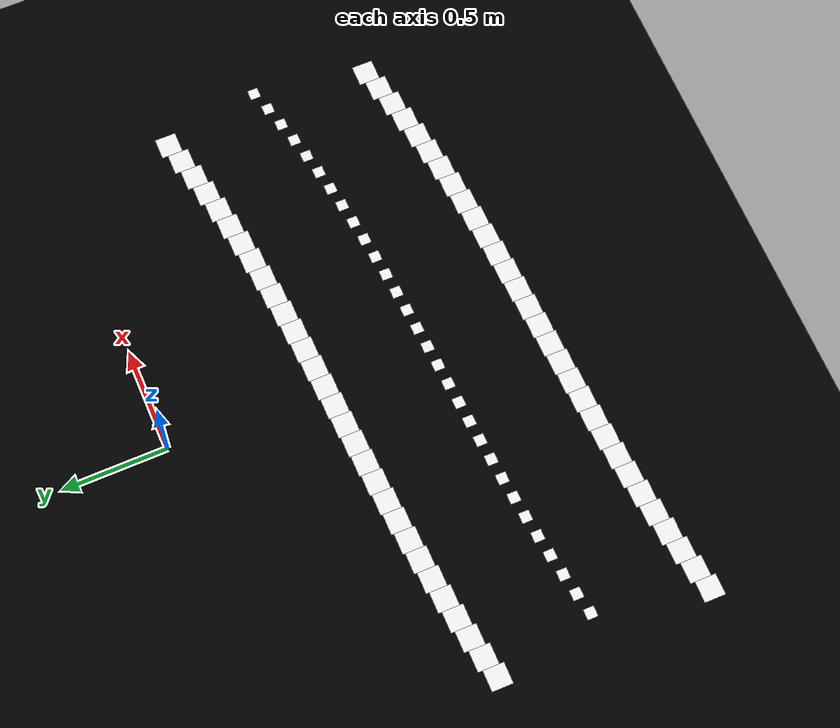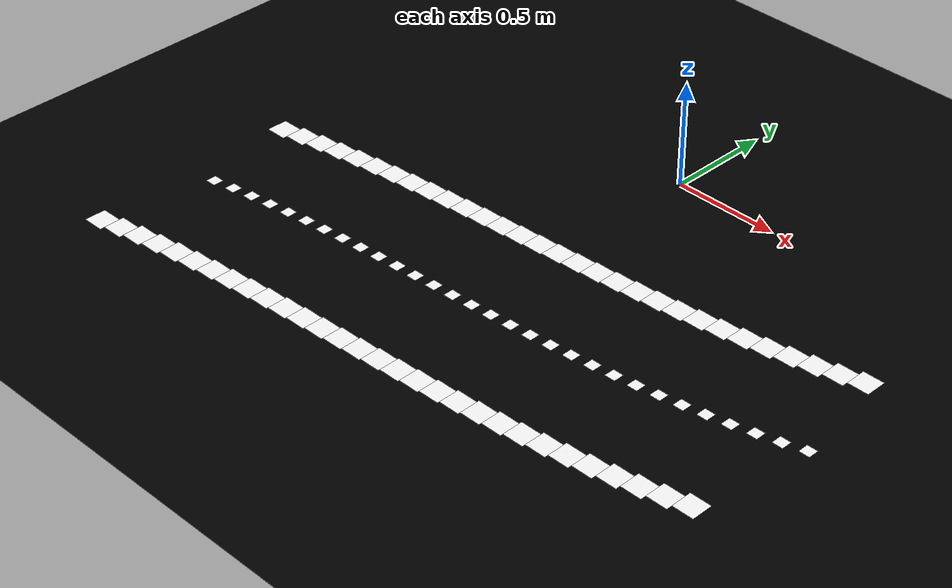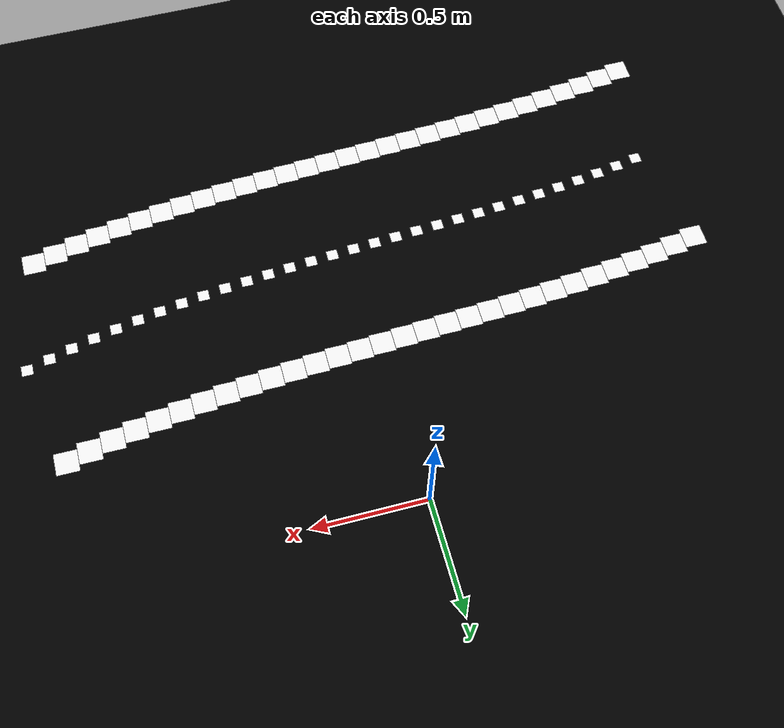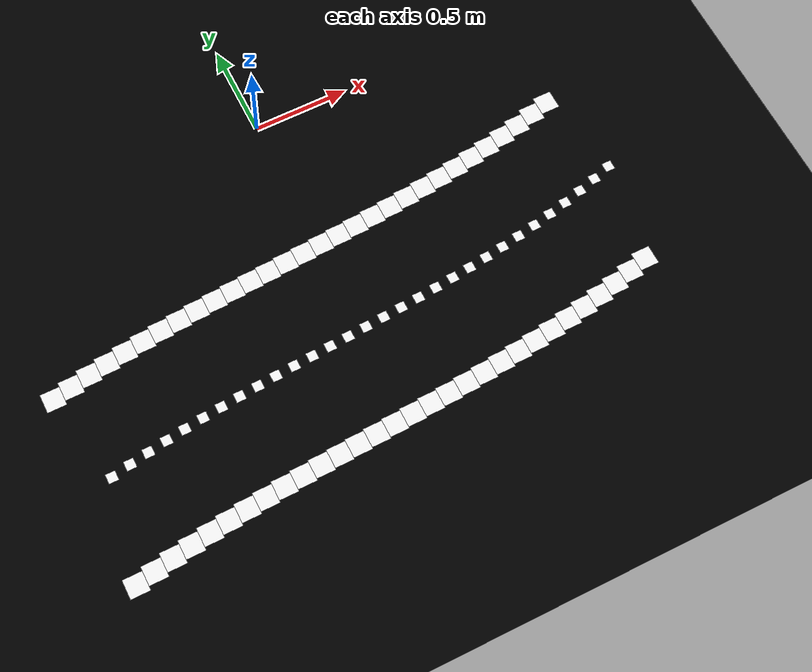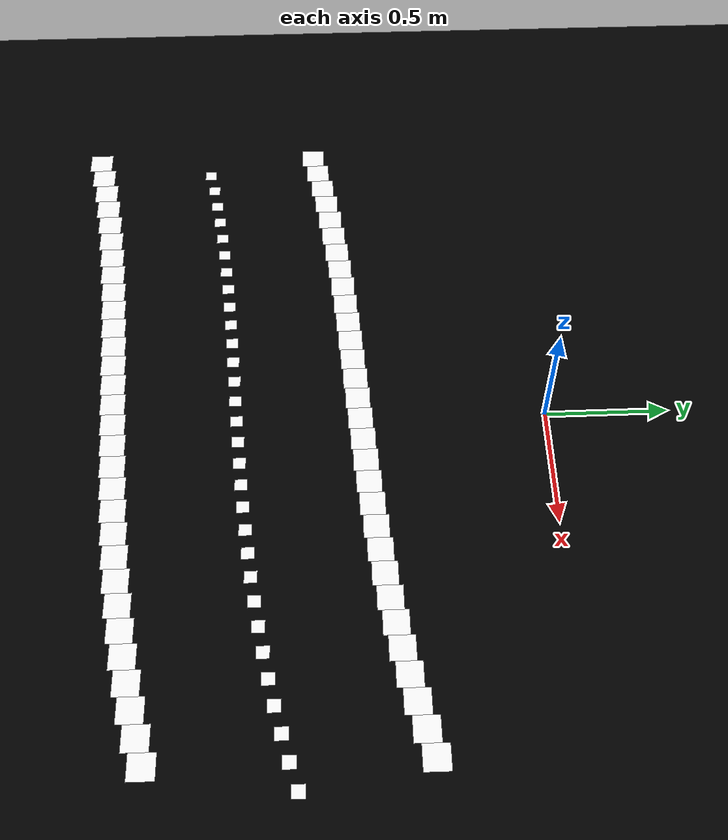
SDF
<sdf version="1.5">
 <model name="AutoNOMOS_mini_intersection">
  <static>true</static>
  <link name="field">
   <pose>0 0 0.01 0 0 0</pose>
   <collision name="collision">
    <geometry><plane><normal>0 0 1</normal><size>10 10</size></plane></geometry>
    <surface><friction><ode><mu>100</mu><mu2>50</mu2></ode></friction></surface>
   </collision>
   <visual name="carpet">
    <cast_shadows>false</cast_shadows>
    <geometry><plane><normal>0 0 1</normal><size>10 10</size></plane></geometry>
    <material>
     <ambient>0 0 0 0</ambient>
     <diffuse>0 0 0 1</diffuse>
     <specular>0 0 0 0</specular>
     <emissive>0 0 0 0</emissive>
    </material>
   </visual>
  </link>
  <link name="L2_p31">
   <pose>-1.5 -0.928 0.011 0 0 0</pose>
   <visual name="visual_L2_p31">
    <cast_shadows>false</cast_shadows>
    <geometry><plane><normal>0 0 1</normal><size>.1 .1</size></plane></geometry>
    <material>
     <ambient>0 0 0 0</ambient>
     <diffuse>1 1 1 0</diffuse>
     <specular>0 0 0 0</specular>
     <emissive>0 0 0 0</emissive>
    </material>
   </visual>
  </link>
  <link name="L3_p31">
   <pose>-1.5 -1.928 0.011 0 0 0</pose>
   <visual name="visual_L3_p31">
    <cast_shadows>false</cast_shadows>
    <geometry><plane><normal>0 0 1</normal><size>.1 .1</size></plane></geometry>
    <material>
     <ambient>0 0 0 0</ambient>
     <diffuse>1 1 1 0</diffuse>
     <specular>0 0 0 0</specular>
     <emissive>0 0 0 0</emissive>
    </material>
   </visual>
  </link>
  <link name="L1_p32">
   <pose>-1.4 -1.407 0.011 0 0 0</pose>
   <visual name="visual_L1_p32">
    <cast_shadows>false</cast_shadows>
    <geometry><plane><normal>0 0 1</normal><size>.05 .05</size></plane></geometry>
    <material>
     <ambient>0 0 0 0</ambient>
     <diffuse>1 1 1 0</diffuse>
     <specular>0 0 0 0</specular>
     <emissive>0 0 0 0</emissive>
    </material>
   </visual>
  </link>
  <link name="L2_p32">
   <pose>-1.4 -0.907 0.011 0 0 0</pose>
   <visual name="visual_L2_p32">
    <cast_shadows>false</cast_shadows>
    <geometry><plane><normal>0 0 1</normal><size>.1 .1</size></plane></geometry>
    <material>
     <ambient>0 0 0 0</ambient>
     <diffuse>1 1 1 0</diffuse>
     <specular>0 0 0 0</specular>
     <emissive>0 0 0 0</emissive>
    </material>
   </visual>
  </link>
  <link name="L3_p32">
   <pose>-1.4 -1.907 0.011 0 0 0</pose>
   <visual name="visual_L3_p32">
    <cast_shadows>false</cast_shadows>
    <geometry><plane><normal>0 0 1</normal><size>.1 .1</size></plane></geometry>
    <material>
     <ambient>0 0 0 0</ambient>
     <diffuse>1 1 1 0</diffuse>
     <specular>0 0 0 0</specular>
     <emissive>0 0 0 0</emissive>
    </material>
   </visual>
  </link>
  <link name="L1_p33">
   <pose>-1.3 -1.387 0.011 0 0 0</pose>
   <visual name="visual_L1_p33">
    <cast_shadows>false</cast_shadows>
    <geometry><plane><normal>0 0 1</normal><size>.05 .05</size></plane></geometry>
    <material>
     <ambient>0 0 0 0</ambient>
     <diffuse>1 1 1 0</diffuse>
     <specular>0 0 0 0</specular>
     <emissive>0 0 0 0</emissive>
    </material>
   </visual>
  </link>
  <link name="L2_p33">
   <pose>-1.3 -0.887 0.011 0 0 0</pose>
   <visual name="visual_L2_p33">
    <cast_shadows>false</cast_shadows>
    <geometry><plane><normal>0 0 1</normal><size>.1 .1</size></plane></geometry>
    <material>
     <ambient>0 0 0 0</ambient>
     <diffuse>1 1 1 0</diffuse>
     <specular>0 0 0 0</specular>
     <emissive>0 0 0 0</emissive>
    </material>
   </visual>
  </link>
  <link name="L3_p33">
   <pose>-1.3 -1.887 0.011 0 0 0</pose>
   <visual name="visual_L3_p33">
    <cast_shadows>false</cast_shadows>
    <geometry><plane><normal>0 0 1</normal><size>.1 .1</size></plane></geometry>
    <material>
     <ambient>0 0 0 0</ambient>
     <diffuse>1 1 1 0</diffuse>
     <specular>0 0 0 0</specular>
     <emissive>0 0 0 0</emissive>
    </material>
   </visual>
  </link>
  <link name="L1_p34">
   <pose>-1.2 -1.37 0.011 0 0 0</pose>
   <visual name="visual_L1_p34">
    <cast_shadows>false</cast_shadows>
    <geometry><plane><normal>0 0 1</normal><size>.05 .05</size></plane></geometry>
    <material>
     <ambient>0 0 0 0</ambient>
     <diffuse>1 1 1 0</diffuse>
     <specular>0 0 0 0</specular>
     <emissive>0 0 0 0</emissive>
    </material>
   </visual>
  </link>
  <link name="L2_p34">
   <pose>-1.2 -0.87 0.011 0 0 0</pose>
   <visual name="visual_L2_p34">
    <cast_shadows>false</cast_shadows>
    <geometry><plane><normal>0 0 1</normal><size>.1 .1</size></plane></geometry>
    <material>
     <ambient>0 0 0 0</ambient>
     <diffuse>1 1 1 0</diffuse>
     <specular>0 0 0 0</specular>
     <emissive>0 0 0 0</emissive>
    </material>
   </visual>
  </link>
  <link name="L3_p34">
   <pose>-1.2 -1.87 0.011 0 0 0</pose>
   <visual name="visual_L3_p34">
    <cast_shadows>false</cast_shadows>
    <geometry><plane><normal>0 0 1</normal><size>.1 .1</size></plane></geometry>
    <material>
     <ambient>0 0 0 0</ambient>
     <diffuse>1 1 1 0</diffuse>
     <specular>0 0 0 0</specular>
     <emissive>0 0 0 0</emissive>
    </material>
   </visual>
  </link>
  <link name="L1_p35">
   <pose>-1.1 -1.354 0.011 0 0 0</pose>
   <visual name="visual_L1_p35">
    <cast_shadows>false</cast_shadows>
    <geometry><plane><normal>0 0 1</normal><size>.05 .05</size></plane></geometry>
    <material>
     <ambient>0 0 0 0</ambient>
     <diffuse>1 1 1 0</diffuse>
     <specular>0 0 0 0</specular>
     <emissive>0 0 0 0</emissive>
    </material>
   </visual>
  </link>
  <link name="L2_p35">
   <pose>-1.1 -0.854 0.011 0 0 0</pose>
   <visual name="visual_L2_p35">
    <cast_shadows>false</cast_shadows>
    <geometry><plane><normal>0 0 1</normal><size>.1 .1</size></plane></geometry>
    <material>
     <ambient>0 0 0 0</ambient>
     <diffuse>1 1 1 0</diffuse>
     <specular>0 0 0 0</specular>
     <emissive>0 0 0 0</emissive>
    </material>
   </visual>
  </link>
  <link name="L3_p35">
   <pose>-1.1 -1.854 0.011 0 0 0</pose>
   <visual name="visual_L3_p35">
    <cast_shadows>false</cast_shadows>
    <geometry><plane><normal>0 0 1</normal><size>.1 .1</size></plane></geometry>
    <material>
     <ambient>0 0 0 0</ambient>
     <diffuse>1 1 1 0</diffuse>
     <specular>0 0 0 0</specular>
     <emissive>0 0 0 0</emissive>
    </material>
   </visual>
  </link>
  <link name="L1_p36">
   <pose>-1 -1.34 0.011 0 0 0</pose>
   <visual name="visual_L1_p36">
    <cast_shadows>false</cast_shadows>
    <geometry><plane><normal>0 0 1</normal><size>.05 .05</size></plane></geometry>
    <material>
     <ambient>0 0 0 0</ambient>
     <diffuse>1 1 1 0</diffuse>
     <specular>0 0 0 0</specular>
     <emissive>0 0 0 0</emissive>
    </material>
   </visual>
  </link>
  <link name="L2_p36">
   <pose>-1 -0.84 0.011 0 0 0</pose>
   <visual name="visual_L2_p36">
    <cast_shadows>false</cast_shadows>
    <geometry><plane><normal>0 0 1</normal><size>.1 .1</size></plane></geometry>
    <material>
     <ambient>0 0 0 0</ambient>
     <diffuse>1 1 1 0</diffuse>
     <specular>0 0 0 0</specular>
     <emissive>0 0 0 0</emissive>
    </material>
   </visual>
  </link>
  <link name="L3_p36">
   <pose>-1 -1.84 0.011 0 0 0</pose>
   <visual name="visual_L3_p36">
    <cast_shadows>false</cast_shadows>
    <geometry><plane><normal>0 0 1</normal><size>.1 .1</size></plane></geometry>
    <material>
     <ambient>0 0 0 0</ambient>
     <diffuse>1 1 1 0</diffuse>
     <specular>0 0 0 0</specular>
     <emissive>0 0 0 0</emissive>
    </material>
   </visual>
  </link>
  <link name="L1_p37">
   <pose>-0.9 -1.327 0.011 0 0 0</pose>
   <visual name="visual_L1_p37">
    <cast_shadows>false</cast_shadows>
    <geometry><plane><normal>0 0 1</normal><size>.05 .05</size></plane></geometry>
    <material>
     <ambient>0 0 0 0</ambient>
     <diffuse>1 1 1 0</diffuse>
     <specular>0 0 0 0</specular>
     <emissive>0 0 0 0</emissive>
    </material>
   </visual>
  </link>
  <link name="L2_p37">
   <pose>-0.9 -0.827 0.011 0 0 0</pose>
   <visual name="visual_L2_p37">
    <cast_shadows>false</cast_shadows>
    <geometry><plane><normal>0 0 1</normal><size>.1 .1</size></plane></geometry>
    <material>
     <ambient>0 0 0 0</ambient>
     <diffuse>1 1 1 0</diffuse>
     <specular>0 0 0 0</specular>
     <emissive>0 0 0 0</emissive>
    </material>
   </visual>
  </link>
  <link name="L3_p37">
   <pose>-0.9 -1.827 0.011 0 0 0</pose>
   <visual name="visual_L3_p37">
    <cast_shadows>false</cast_shadows>
    <geometry><plane><normal>0 0 1</normal><size>.1 .1</size></plane></geometry>
    <material>
     <ambient>0 0 0 0</ambient>
     <diffuse>1 1 1 0</diffuse>
     <specular>0 0 0 0</specular>
     <emissive>0 0 0 0</emissive>
    </material>
   </visual>
  </link>
  <link name="L1_p38">
   <pose>-0.8 -1.316 0.011 0 0 0</pose>
   <visual name="visual_L1_p38">
    <cast_shadows>false</cast_shadows>
    <geometry><plane><normal>0 0 1</normal><size>.05 .05</size></plane></geometry>
    <material>
     <ambient>0 0 0 0</ambient>
     <diffuse>1 1 1 0</diffuse>
     <specular>0 0 0 0</specular>
     <emissive>0 0 0 0</emissive>
    </material>
   </visual>
  </link>
  <link name="L2_p38">
   <pose>-0.8 -0.816 0.011 0 0 0</pose>
   <visual name="visual_L2_p38">
    <cast_shadows>false</cast_shadows>
    <geometry><plane><normal>0 0 1</normal><size>.1 .1</size></plane></geometry>
    <material>
     <ambient>0 0 0 0</ambient>
     <diffuse>1 1 1 0</diffuse>
     <specular>0 0 0 0</specular>
     <emissive>0 0 0 0</emissive>
    </material>
   </visual>
  </link>
  <link name="L3_p38">
   <pose>-0.8 -1.816 0.011 0 0 0</pose>
   <visual name="visual_L3_p38">
    <cast_shadows>false</cast_shadows>
    <geometry><plane><normal>0 0 1</normal><size>.1 .1</size></plane></geometry>
    <material>
     <ambient>0 0 0 0</ambient>
     <diffuse>1 1 1 0</diffuse>
     <specular>0 0 0 0</specular>
     <emissive>0 0 0 0</emissive>
    </material>
   </visual>
  </link>
  <link name="L1_p39">
   <pose>-0.7 -1.305 0.011 0 0 0</pose>
   <visual name="visual_L1_p39">
    <cast_shadows>false</cast_shadows>
    <geometry><plane><normal>0 0 1</normal><size>.05 .05</size></plane></geometry>
    <material>
     <ambient>0 0 0 0</ambient>
     <diffuse>1 1 1 0</diffuse>
     <specular>0 0 0 0</specular>
     <emissive>0 0 0 0</emissive>
    </material>
   </visual>
  </link>
  <link name="L2_p39">
   <pose>-0.7 -0.805 0.011 0 0 0</pose>
   <visual name="visual_L2_p39">
    <cast_shadows>false</cast_shadows>
    <geometry><plane><normal>0 0 1</normal><size>.1 .1</size></plane></geometry>
    <material>
     <ambient>0 0 0 0</ambient>
     <diffuse>1 1 1 0</diffuse>
     <specular>0 0 0 0</specular>
     <emissive>0 0 0 0</emissive>
    </material>
   </visual>
  </link>
  <link name="L3_p39">
   <pose>-0.7 -1.805 0.011 0 0 0</pose>
   <visual name="visual_L3_p39">
    <cast_shadows>false</cast_shadows>
    <geometry><plane><normal>0 0 1</normal><size>.1 .1</size></plane></geometry>
    <material>
     <ambient>0 0 0 0</ambient>
     <diffuse>1 1 1 0</diffuse>
     <specular>0 0 0 0</specular>
     <emissive>0 0 0 0</emissive>
    </material>
   </visual>
  </link>
  <link name="L1_p40">
   <pose>-0.6 -1.296 0.011 0 0 0</pose>
   <visual name="visual_L1_p40">
    <cast_shadows>false</cast_shadows>
    <geometry><plane><normal>0 0 1</normal><size>.05 .05</size></plane></geometry>
    <material>
     <ambient>0 0 0 0</ambient>
     <diffuse>1 1 1 0</diffuse>
     <specular>0 0 0 0</specular>
     <emissive>0 0 0 0</emissive>
    </material>
   </visual>
  </link>
  <link name="L2_p40">
   <pose>-0.6 -0.796 0.011 0 0 0</pose>
   <visual name="visual_L2_p40">
    <cast_shadows>false</cast_shadows>
    <geometry><plane><normal>0 0 1</normal><size>.1 .1</size></plane></geometry>
    <material>
     <ambient>0 0 0 0</ambient>
     <diffuse>1 1 1 0</diffuse>
     <specular>0 0 0 0</specular>
     <emissive>0 0 0 0</emissive>
    </material>
   </visual>
  </link>
  <link name="L3_p40">
   <pose>-0.6 -1.796 0.011 0 0 0</pose>
   <visual name="visual_L3_p40">
    <cast_shadows>false</cast_shadows>
    <geometry><plane><normal>0 0 1</normal><size>.1 .1</size></plane></geometry>
    <material>
     <ambient>0 0 0 0</ambient>
     <diffuse>1 1 1 0</diffuse>
     <specular>0 0 0 0</specular>
     <emissive>0 0 0 0</emissive>
    </material>
   </visual>
  </link>
  <link name="L1_p41">
   <pose>-0.5 -1.287 0.011 0 0 0</pose>
   <visual name="visual_L1_p41">
    <cast_shadows>false</cast_shadows>
    <geometry><plane><normal>0 0 1</normal><size>.05 .05</size></plane></geometry>
    <material>
     <ambient>0 0 0 0</ambient>
     <diffuse>1 1 1 0</diffuse>
     <specular>0 0 0 0</specular>
     <emissive>0 0 0 0</emissive>
    </material>
   </visual>
  </link>
  <link name="L2_p41">
   <pose>-0.5 -0.787 0.011 0 0 0</pose>
   <visual name="visual_L2_p41">
    <cast_shadows>false</cast_shadows>
    <geometry><plane><normal>0 0 1</normal><size>.1 .1</size></plane></geometry>
    <material>
     <ambient>0 0 0 0</ambient>
     <diffuse>1 1 1 0</diffuse>
     <specular>0 0 0 0</specular>
     <emissive>0 0 0 0</emissive>
    </material>
   </visual>
  </link>
  <link name="L3_p41">
   <pose>-0.5 -1.787 0.011 0 0 0</pose>
   <visual name="visual_L3_p41">
    <cast_shadows>false</cast_shadows>
    <geometry><plane><normal>0 0 1</normal><size>.1 .1</size></plane></geometry>
    <material>
     <ambient>0 0 0 0</ambient>
     <diffuse>1 1 1 0</diffuse>
     <specular>0 0 0 0</specular>
     <emissive>0 0 0 0</emissive>
    </material>
   </visual>
  </link>
  <link name="L1_p42">
   <pose>-0.4 -1.279 0.011 0 0 0</pose>
   <visual name="visual_L1_p42">
    <cast_shadows>false</cast_shadows>
    <geometry><plane><normal>0 0 1</normal><size>.05 .05</size></plane></geometry>
    <material>
     <ambient>0 0 0 0</ambient>
     <diffuse>1 1 1 0</diffuse>
     <specular>0 0 0 0</specular>
     <emissive>0 0 0 0</emissive>
    </material>
   </visual>
  </link>
  <link name="L2_p42">
   <pose>-0.4 -0.779 0.011 0 0 0</pose>
   <visual name="visual_L2_p42">
    <cast_shadows>false</cast_shadows>
    <geometry><plane><normal>0 0 1</normal><size>.1 .1</size></plane></geometry>
    <material>
     <ambient>0 0 0 0</ambient>
     <diffuse>1 1 1 0</diffuse>
     <specular>0 0 0 0</specular>
     <emissive>0 0 0 0</emissive>
    </material>
   </visual>
  </link>
  <link name="L3_p42">
   <pose>-0.4 -1.779 0.011 0 0 0</pose>
   <visual name="visual_L3_p42">
    <cast_shadows>false</cast_shadows>
    <geometry><plane><normal>0 0 1</normal><size>.1 .1</size></plane></geometry>
    <material>
     <ambient>0 0 0 0</ambient>
     <diffuse>1 1 1 0</diffuse>
     <specular>0 0 0 0</specular>
     <emissive>0 0 0 0</emissive>
    </material>
   </visual>
  </link>
  <link name="L1_p43">
   <pose>-0.3 -1.272 0.011 0 0 0</pose>
   <visual name="visual_L1_p43">
    <cast_shadows>false</cast_shadows>
    <geometry><plane><normal>0 0 1</normal><size>.05 .05</size></plane></geometry>
    <material>
     <ambient>0 0 0 0</ambient>
     <diffuse>1 1 1 0</diffuse>
     <specular>0 0 0 0</specular>
     <emissive>0 0 0 0</emissive>
    </material>
   </visual>
  </link>
  <link name="L2_p43">
   <pose>-0.3 -0.772 0.011 0 0 0</pose>
   <visual name="visual_L2_p43">
    <cast_shadows>false</cast_shadows>
    <geometry><plane><normal>0 0 1</normal><size>.1 .1</size></plane></geometry>
    <material>
     <ambient>0 0 0 0</ambient>
     <diffuse>1 1 1 0</diffuse>
     <specular>0 0 0 0</specular>
     <emissive>0 0 0 0</emissive>
    </material>
   </visual>
  </link>
  <link name="L3_p43">
   <pose>-0.3 -1.772 0.011 0 0 0</pose>
   <visual name="visual_L3_p43">
    <cast_shadows>false</cast_shadows>
    <geometry><plane><normal>0 0 1</normal><size>.1 .1</size></plane></geometry>
    <material>
     <ambient>0 0 0 0</ambient>
     <diffuse>1 1 1 0</diffuse>
     <specular>0 0 0 0</specular>
     <emissive>0 0 0 0</emissive>
    </material>
   </visual>
  </link>
  <link name="L1_p44">
   <pose>-0.2 -1.264 0.011 0 0 0</pose>
   <visual name="visual_L1_p44">
    <cast_shadows>false</cast_shadows>
    <geometry><plane><normal>0 0 1</normal><size>.05 .05</size></plane></geometry>
    <material>
     <ambient>0 0 0 0</ambient>
     <diffuse>1 1 1 0</diffuse>
     <specular>0 0 0 0</specular>
     <emissive>0 0 0 0</emissive>
    </material>
   </visual>
  </link>
  <link name="L2_p44">
   <pose>-0.2 -0.764 0.011 0 0 0</pose>
   <visual name="visual_L2_p44">
    <cast_shadows>false</cast_shadows>
    <geometry><plane><normal>0 0 1</normal><size>.1 .1</size></plane></geometry>
    <material>
     <ambient>0 0 0 0</ambient>
     <diffuse>1 1 1 0</diffuse>
     <specular>0 0 0 0</specular>
     <emissive>0 0 0 0</emissive>
    </material>
   </visual>
  </link>
  <link name="L3_p44">
   <pose>-0.2 -1.764 0.011 0 0 0</pose>
   <visual name="visual_L3_p44">
    <cast_shadows>false</cast_shadows>
    <geometry><plane><normal>0 0 1</normal><size>.1 .1</size></plane></geometry>
    <material>
     <ambient>0 0 0 0</ambient>
     <diffuse>1 1 1 0</diffuse>
     <specular>0 0 0 0</specular>
     <emissive>0 0 0 0</emissive>
    </material>
   </visual>
  </link>
  <link name="L1_p45">
   <pose>-0.1 -1.257 0.011 0 0 0</pose>
   <visual name="visual_L1_p45">
    <cast_shadows>false</cast_shadows>
    <geometry><plane><normal>0 0 1</normal><size>.05 .05</size></plane></geometry>
    <material>
     <ambient>0 0 0 0</ambient>
     <diffuse>1 1 1 0</diffuse>
     <specular>0 0 0 0</specular>
     <emissive>0 0 0 0</emissive>
    </material>
   </visual>
  </link>
  <link name="L2_p45">
   <pose>-0.1 -0.757 0.011 0 0 0</pose>
   <visual name="visual_L2_p45">
    <cast_shadows>false</cast_shadows>
    <geometry><plane><normal>0 0 1</normal><size>.1 .1</size></plane></geometry>
    <material>
     <ambient>0 0 0 0</ambient>
     <diffuse>1 1 1 0</diffuse>
     <specular>0 0 0 0</specular>
     <emissive>0 0 0 0</emissive>
    </material>
   </visual>
  </link>
  <link name="L3_p45">
   <pose>-0.1 -1.757 0.011 0 0 0</pose>
   <visual name="visual_L3_p45">
    <cast_shadows>false</cast_shadows>
    <geometry><plane><normal>0 0 1</normal><size>.1 .1</size></plane></geometry>
    <material>
     <ambient>0 0 0 0</ambient>
     <diffuse>1 1 1 0</diffuse>
     <specular>0 0 0 0</specular>
     <emissive>0 0 0 0</emissive>
    </material>
   </visual>
  </link>
  <link name="L1_p46">
   <pose>0 -1.249 0.011 0 0 0</pose>
   <visual name="visual_L1_p46">
    <cast_shadows>false</cast_shadows>
    <geometry><plane><normal>0 0 1</normal><size>.05 .05</size></plane></geometry>
    <material>
     <ambient>0 0 0 0</ambient>
     <diffuse>1 1 1 0</diffuse>
     <specular>0 0 0 0</specular>
     <emissive>0 0 0 0</emissive>
    </material>
   </visual>
  </link>
  <link name="L2_p46">
   <pose>0 -0.749 0.011 0 0 0</pose>
   <visual name="visual_L2_p46">
    <cast_shadows>false</cast_shadows>
    <geometry><plane><normal>0 0 1</normal><size>.1 .1</size></plane></geometry>
    <material>
     <ambient>0 0 0 0</ambient>
     <diffuse>1 1 1 0</diffuse>
     <specular>0 0 0 0</specular>
     <emissive>0 0 0 0</emissive>
    </material>
   </visual>
  </link>
  <link name="L3_p46">
   <pose>0 -1.749 0.011 0 0 0</pose>
   <visual name="visual_L3_p46">
    <cast_shadows>false</cast_shadows>
    <geometry><plane><normal>0 0 1</normal><size>.1 .1</size></plane></geometry>
    <material>
     <ambient>0 0 0 0</ambient>
     <diffuse>1 1 1 0</diffuse>
     <specular>0 0 0 0</specular>
     <emissive>0 0 0 0</emissive>
    </material>
   </visual>
  </link>
  <link name="L1_p47">
   <pose>0.1 -1.241 0.011 0 0 0</pose>
   <visual name="visual_L1_p47">
    <cast_shadows>false</cast_shadows>
    <geometry><plane><normal>0 0 1</normal><size>.05 .05</size></plane></geometry>
    <material>
     <ambient>0 0 0 0</ambient>
     <diffuse>1 1 1 0</diffuse>
     <specular>0 0 0 0</specular>
     <emissive>0 0 0 0</emissive>
    </material>
   </visual>
  </link>
  <link name="L2_p47">
   <pose>0.1 -0.741 0.011 0 0 0</pose>
   <visual name="visual_L2_p47">
    <cast_shadows>false</cast_shadows>
    <geometry><plane><normal>0 0 1</normal><size>.1 .1</size></plane></geometry>
    <material>
     <ambient>0 0 0 0</ambient>
     <diffuse>1 1 1 0</diffuse>
     <specular>0 0 0 0</specular>
     <emissive>0 0 0 0</emissive>
    </material>
   </visual>
  </link>
  <link name="L3_p47">
   <pose>0.1 -1.741 0.011 0 0 0</pose>
   <visual name="visual_L3_p47">
    <cast_shadows>false</cast_shadows>
    <geometry><plane><normal>0 0 1</normal><size>.1 .1</size></plane></geometry>
    <material>
     <ambient>0 0 0 0</ambient>
     <diffuse>1 1 1 0</diffuse>
     <specular>0 0 0 0</specular>
     <emissive>0 0 0 0</emissive>
    </material>
   </visual>
  </link>
  <link name="L1_p48">
   <pose>0.2 -1.233 0.011 0 0 0</pose>
   <visual name="visual_L1_p48">
    <cast_shadows>false</cast_shadows>
    <geometry><plane><normal>0 0 1</normal><size>.05 .05</size></plane></geometry>
    <material>
     <ambient>0 0 0 0</ambient>
     <diffuse>1 1 1 0</diffuse>
     <specular>0 0 0 0</specular>
     <emissive>0 0 0 0</emissive>
    </material>
   </visual>
  </link>
  <link name="L2_p48">
   <pose>0.2 -0.733 0.011 0 0 0</pose>
   <visual name="visual_L2_p48">
    <cast_shadows>false</cast_shadows>
    <geometry><plane><normal>0 0 1</normal><size>.1 .1</size></plane></geometry>
    <material>
     <ambient>0 0 0 0</ambient>
     <diffuse>1 1 1 0</diffuse>
     <specular>0 0 0 0</specular>
     <emissive>0 0 0 0</emissive>
    </material>
   </visual>
  </link>
  <link name="L3_p48">
   <pose>0.2 -1.733 0.011 0 0 0</pose>
   <visual name="visual_L3_p48">
    <cast_shadows>false</cast_shadows>
    <geometry><plane><normal>0 0 1</normal><size>.1 .1</size></plane></geometry>
    <material>
     <ambient>0 0 0 0</ambient>
     <diffuse>1 1 1 0</diffuse>
     <specular>0 0 0 0</specular>
     <emissive>0 0 0 0</emissive>
    </material>
   </visual>
  </link>
  <link name="L1_p49">
   <pose>0.3 -1.224 0.011 0 0 0</pose>
   <visual name="visual_L1_p49">
    <cast_shadows>false</cast_shadows>
    <geometry><plane><normal>0 0 1</normal><size>.05 .05</size></plane></geometry>
    <material>
     <ambient>0 0 0 0</ambient>
     <diffuse>1 1 1 0</diffuse>
     <specular>0 0 0 0</specular>
     <emissive>0 0 0 0</emissive>
    </material>
   </visual>
  </link>
  <link name="L2_p49">
   <pose>0.3 -0.724 0.011 0 0 0</pose>
   <visual name="visual_L2_p49">
    <cast_shadows>false</cast_shadows>
    <geometry><plane><normal>0 0 1</normal><size>.1 .1</size></plane></geometry>
    <material>
     <ambient>0 0 0 0</ambient>
     <diffuse>1 1 1 0</diffuse>
     <specular>0 0 0 0</specular>
     <emissive>0 0 0 0</emissive>
    </material>
   </visual>
  </link>
  <link name="L3_p49">
   <pose>0.3 -1.724 0.011 0 0 0</pose>
   <visual name="visual_L3_p49">
    <cast_shadows>false</cast_shadows>
    <geometry><plane><normal>0 0 1</normal><size>.1 .1</size></plane></geometry>
    <material>
     <ambient>0 0 0 0</ambient>
     <diffuse>1 1 1 0</diffuse>
     <specular>0 0 0 0</specular>
     <emissive>0 0 0 0</emissive>
    </material>
   </visual>
  </link>
  <link name="L1_p50">
   <pose>0.4 -1.214 0.011 0 0 0</pose>
   <visual name="visual_L1_p50">
    <cast_shadows>false</cast_shadows>
    <geometry><plane><normal>0 0 1</normal><size>.05 .05</size></plane></geometry>
    <material>
     <ambient>0 0 0 0</ambient>
     <diffuse>1 1 1 0</diffuse>
     <specular>0 0 0 0</specular>
     <emissive>0 0 0 0</emissive>
    </material>
   </visual>
  </link>
  <link name="L2_p50">
   <pose>0.4 -0.714 0.011 0 0 0</pose>
   <visual name="visual_L2_p50">
    <cast_shadows>false</cast_shadows>
    <geometry><plane><normal>0 0 1</normal><size>.1 .1</size></plane></geometry>
    <material>
     <ambient>0 0 0 0</ambient>
     <diffuse>1 1 1 0</diffuse>
     <specular>0 0 0 0</specular>
     <emissive>0 0 0 0</emissive>
    </material>
   </visual>
  </link>
  <link name="L3_p50">
   <pose>0.4 -1.714 0.011 0 0 0</pose>
   <visual name="visual_L3_p50">
    <cast_shadows>false</cast_shadows>
    <geometry><plane><normal>0 0 1</normal><size>.1 .1</size></plane></geometry>
    <material>
     <ambient>0 0 0 0</ambient>
     <diffuse>1 1 1 0</diffuse>
     <specular>0 0 0 0</specular>
     <emissive>0 0 0 0</emissive>
    </material>
   </visual>
  </link>
  <link name="L1_p51">
   <pose>0.5 -1.203 0.011 0 0 0</pose>
   <visual name="visual_L1_p51">
    <cast_shadows>false</cast_shadows>
    <geometry><plane><normal>0 0 1</normal><size>.05 .05</size></plane></geometry>
    <material>
     <ambient>0 0 0 0</ambient>
     <diffuse>1 1 1 0</diffuse>
     <specular>0 0 0 0</specular>
     <emissive>0 0 0 0</emissive>
    </material>
   </visual>
  </link>
  <link name="L2_p51">
   <pose>0.5 -0.703 0.011 0 0 0</pose>
   <visual name="visual_L2_p51">
    <cast_shadows>false</cast_shadows>
    <geometry><plane><normal>0 0 1</normal><size>.1 .1</size></plane></geometry>
    <material>
     <ambient>0 0 0 0</ambient>
     <diffuse>1 1 1 0</diffuse>
     <specular>0 0 0 0</specular>
     <emissive>0 0 0 0</emissive>
    </material>
   </visual>
  </link>
  <link name="L3_p51">
   <pose>0.5 -1.703 0.011 0 0 0</pose>
   <visual name="visual_L3_p51">
    <cast_shadows>false</cast_shadows>
    <geometry><plane><normal>0 0 1</normal><size>.1 .1</size></plane></geometry>
    <material>
     <ambient>0 0 0 0</ambient>
     <diffuse>1 1 1 0</diffuse>
     <specular>0 0 0 0</specular>
     <emissive>0 0 0 0</emissive>
    </material>
   </visual>
  </link>
  <link name="L1_p52">
   <pose>0.6 -1.191 0.011 0 0 0</pose>
   <visual name="visual_L1_p52">
    <cast_shadows>false</cast_shadows>
    <geometry><plane><normal>0 0 1</normal><size>.05 .05</size></plane></geometry>
    <material>
     <ambient>0 0 0 0</ambient>
     <diffuse>1 1 1 0</diffuse>
     <specular>0 0 0 0</specular>
     <emissive>0 0 0 0</emissive>
    </material>
   </visual>
  </link>
  <link name="L2_p52">
   <pose>0.6 -0.691 0.011 0 0 0</pose>
   <visual name="visual_L2_p52">
    <cast_shadows>false</cast_shadows>
    <geometry><plane><normal>0 0 1</normal><size>.1 .1</size></plane></geometry>
    <material>
     <ambient>0 0 0 0</ambient>
     <diffuse>1 1 1 0</diffuse>
     <specular>0 0 0 0</specular>
     <emissive>0 0 0 0</emissive>
    </material>
   </visual>
  </link>
  <link name="L3_p52">
   <pose>0.6 -1.691 0.011 0 0 0</pose>
   <visual name="visual_L3_p52">
    <cast_shadows>false</cast_shadows>
    <geometry><plane><normal>0 0 1</normal><size>.1 .1</size></plane></geometry>
    <material>
     <ambient>0 0 0 0</ambient>
     <diffuse>1 1 1 0</diffuse>
     <specular>0 0 0 0</specular>
     <emissive>0 0 0 0</emissive>
    </material>
   </visual>
  </link>
  <link name="L1_p53">
   <pose>0.7 -1.178 0.011 0 0 0</pose>
   <visual name="visual_L1_p53">
    <cast_shadows>false</cast_shadows>
    <geometry><plane><normal>0 0 1</normal><size>.05 .05</size></plane></geometry>
    <material>
     <ambient>0 0 0 0</ambient>
     <diffuse>1 1 1 0</diffuse>
     <specular>0 0 0 0</specular>
     <emissive>0 0 0 0</emissive>
    </material>
   </visual>
  </link>
  <link name="L2_p53">
   <pose>0.7 -0.678 0.011 0 0 0</pose>
   <visual name="visual_L2_p53">
    <cast_shadows>false</cast_shadows>
    <geometry><plane><normal>0 0 1</normal><size>.1 .1</size></plane></geometry>
    <material>
     <ambient>0 0 0 0</ambient>
     <diffuse>1 1 1 0</diffuse>
     <specular>0 0 0 0</specular>
     <emissive>0 0 0 0</emissive>
    </material>
   </visual>
  </link>
  <link name="L3_p53">
   <pose>0.7 -1.678 0.011 0 0 0</pose>
   <visual name="visual_L3_p53">
    <cast_shadows>false</cast_shadows>
    <geometry><plane><normal>0 0 1</normal><size>.1 .1</size></plane></geometry>
    <material>
     <ambient>0 0 0 0</ambient>
     <diffuse>1 1 1 0</diffuse>
     <specular>0 0 0 0</specular>
     <emissive>0 0 0 0</emissive>
    </material>
   </visual>
  </link>
  <link name="L1_p54">
   <pose>0.8 -1.163 0.011 0 0 0</pose>
   <visual name="visual_L1_p54">
    <cast_shadows>false</cast_shadows>
    <geometry><plane><normal>0 0 1</normal><size>.05 .05</size></plane></geometry>
    <material>
     <ambient>0 0 0 0</ambient>
     <diffuse>1 1 1 0</diffuse>
     <specular>0 0 0 0</specular>
     <emissive>0 0 0 0</emissive>
    </material>
   </visual>
  </link>
  <link name="L2_p54">
   <pose>0.8 -0.663 0.011 0 0 0</pose>
   <visual name="visual_L2_p54">
    <cast_shadows>false</cast_shadows>
    <geometry><plane><normal>0 0 1</normal><size>.1 .1</size></plane></geometry>
    <material>
     <ambient>0 0 0 0</ambient>
     <diffuse>1 1 1 0</diffuse>
     <specular>0 0 0 0</specular>
     <emissive>0 0 0 0</emissive>
    </material>
   </visual>
  </link>
  <link name="L3_p54">
   <pose>0.8 -1.663 0.011 0 0 0</pose>
   <visual name="visual_L3_p54">
    <cast_shadows>false</cast_shadows>
    <geometry><plane><normal>0 0 1</normal><size>.1 .1</size></plane></geometry>
    <material>
     <ambient>0 0 0 0</ambient>
     <diffuse>1 1 1 0</diffuse>
     <specular>0 0 0 0</specular>
     <emissive>0 0 0 0</emissive>
    </material>
   </visual>
  </link>
  <link name="L1_p55">
   <pose>0.9 -1.146 0.011 0 0 0</pose>
   <visual name="visual_L1_p55">
    <cast_shadows>false</cast_shadows>
    <geometry><plane><normal>0 0 1</normal><size>.05 .05</size></plane></geometry>
    <material>
     <ambient>0 0 0 0</ambient>
     <diffuse>1 1 1 0</diffuse>
     <specular>0 0 0 0</specular>
     <emissive>0 0 0 0</emissive>
    </material>
   </visual>
  </link>
  <link name="L2_p55">
   <pose>0.9 -0.646 0.011 0 0 0</pose>
   <visual name="visual_L2_p55">
    <cast_shadows>false</cast_shadows>
    <geometry><plane><normal>0 0 1</normal><size>.1 .1</size></plane></geometry>
    <material>
     <ambient>0 0 0 0</ambient>
     <diffuse>1 1 1 0</diffuse>
     <specular>0 0 0 0</specular>
     <emissive>0 0 0 0</emissive>
    </material>
   </visual>
  </link>
  <link name="L3_p55">
   <pose>0.9 -1.646 0.011 0 0 0</pose>
   <visual name="visual_L3_p55">
    <cast_shadows>false</cast_shadows>
    <geometry><plane><normal>0 0 1</normal><size>.1 .1</size></plane></geometry>
    <material>
     <ambient>0 0 0 0</ambient>
     <diffuse>1 1 1 0</diffuse>
     <specular>0 0 0 0</specular>
     <emissive>0 0 0 0</emissive>
    </material>
   </visual>
  </link>
  <link name="L1_p56">
   <pose>1 -1.128 0.011 0 0 0</pose>
   <visual name="visual_L1_p56">
    <cast_shadows>false</cast_shadows>
    <geometry><plane><normal>0 0 1</normal><size>.05 .05</size></plane></geometry>
    <material>
     <ambient>0 0 0 0</ambient>
     <diffuse>1 1 1 0</diffuse>
     <specular>0 0 0 0</specular>
     <emissive>0 0 0 0</emissive>
    </material>
   </visual>
  </link>
  <link name="L2_p56">
   <pose>1 -0.628 0.011 0 0 0</pose>
   <visual name="visual_L2_p56">
    <cast_shadows>false</cast_shadows>
    <geometry><plane><normal>0 0 1</normal><size>.1 .1</size></plane></geometry>
    <material>
     <ambient>0 0 0 0</ambient>
     <diffuse>1 1 1 0</diffuse>
     <specular>0 0 0 0</specular>
     <emissive>0 0 0 0</emissive>
    </material>
   </visual>
  </link>
  <link name="L3_p56">
   <pose>1 -1.628 0.011 0 0 0</pose>
   <visual name="visual_L3_p56">
    <cast_shadows>false</cast_shadows>
    <geometry><plane><normal>0 0 1</normal><size>.1 .1</size></plane></geometry>
    <material>
     <ambient>0 0 0 0</ambient>
     <diffuse>1 1 1 0</diffuse>
     <specular>0 0 0 0</specular>
     <emissive>0 0 0 0</emissive>
    </material>
   </visual>
  </link>
  <link name="L1_p57">
   <pose>1.1 -1.107 0.011 0 0 0</pose>
   <visual name="visual_L1_p57">
    <cast_shadows>false</cast_shadows>
    <geometry><plane><normal>0 0 1</normal><size>.05 .05</size></plane></geometry>
    <material>
     <ambient>0 0 0 0</ambient>
     <diffuse>1 1 1 0</diffuse>
     <specular>0 0 0 0</specular>
     <emissive>0 0 0 0</emissive>
    </material>
   </visual>
  </link>
  <link name="L2_p57">
   <pose>1.1 -0.607 0.011 0 0 0</pose>
   <visual name="visual_L2_p57">
    <cast_shadows>false</cast_shadows>
    <geometry><plane><normal>0 0 1</normal><size>.1 .1</size></plane></geometry>
    <material>
     <ambient>0 0 0 0</ambient>
     <diffuse>1 1 1 0</diffuse>
     <specular>0 0 0 0</specular>
     <emissive>0 0 0 0</emissive>
    </material>
   </visual>
  </link>
  <link name="L3_p57">
   <pose>1.1 -1.607 0.011 0 0 0</pose>
   <visual name="visual_L3_p57">
    <cast_shadows>false</cast_shadows>
    <geometry><plane><normal>0 0 1</normal><size>.1 .1</size></plane></geometry>
    <material>
     <ambient>0 0 0 0</ambient>
     <diffuse>1 1 1 0</diffuse>
     <specular>0 0 0 0</specular>
     <emissive>0 0 0 0</emissive>
    </material>
   </visual>
  </link>
  <link name="L1_p58">
   <pose>1.2 -1.085 0.011 0 0 0</pose>
   <visual name="visual_L1_p58">
    <cast_shadows>false</cast_shadows>
    <geometry><plane><normal>0 0 1</normal><size>.05 .05</size></plane></geometry>
    <material>
     <ambient>0 0 0 0</ambient>
     <diffuse>1 1 1 0</diffuse>
     <specular>0 0 0 0</specular>
     <emissive>0 0 0 0</emissive>
    </material>
   </visual>
  </link>
  <link name="L2_p58">
   <pose>1.2 -0.585 0.011 0 0 0</pose>
   <visual name="visual_L2_p58">
    <cast_shadows>false</cast_shadows>
    <geometry><plane><normal>0 0 1</normal><size>.1 .1</size></plane></geometry>
    <material>
     <ambient>0 0 0 0</ambient>
     <diffuse>1 1 1 0</diffuse>
     <specular>0 0 0 0</specular>
     <emissive>0 0 0 0</emissive>
    </material>
   </visual>
  </link>
  <link name="L3_p58">
   <pose>1.2 -1.585 0.011 0 0 0</pose>
   <visual name="visual_L3_p58">
    <cast_shadows>false</cast_shadows>
    <geometry><plane><normal>0 0 1</normal><size>.1 .1</size></plane></geometry>
    <material>
     <ambient>0 0 0 0</ambient>
     <diffuse>1 1 1 0</diffuse>
     <specular>0 0 0 0</specular>
     <emissive>0 0 0 0</emissive>
    </material>
   </visual>
  </link>
  <link name="L1_p59">
   <pose>1.3 -1.059 0.011 0 0 0</pose>
   <visual name="visual_L1_p59">
    <cast_shadows>false</cast_shadows>
    <geometry><plane><normal>0 0 1</normal><size>.05 .05</size></plane></geometry>
    <material>
     <ambient>0 0 0 0</ambient>
     <diffuse>1 1 1 0</diffuse>
     <specular>0 0 0 0</specular>
     <emissive>0 0 0 0</emissive>
    </material>
   </visual>
  </link>
  <link name="L2_p59">
   <pose>1.3 -0.559 0.011 0 0 0</pose>
   <visual name="visual_L2_p59">
    <cast_shadows>false</cast_shadows>
    <geometry><plane><normal>0 0 1</normal><size>.1 .1</size></plane></geometry>
    <material>
     <ambient>0 0 0 0</ambient>
     <diffuse>1 1 1 0</diffuse>
     <specular>0 0 0 0</specular>
     <emissive>0 0 0 0</emissive>
    </material>
   </visual>
  </link>
  <link name="L3_p59">
   <pose>1.3 -1.559 0.011 0 0 0</pose>
   <visual name="visual_L3_p59">
    <cast_shadows>false</cast_shadows>
    <geometry><plane><normal>0 0 1</normal><size>.1 .1</size></plane></geometry>
    <material>
     <ambient>0 0 0 0</ambient>
     <diffuse>1 1 1 0</diffuse>
     <specular>0 0 0 0</specular>
     <emissive>0 0 0 0</emissive>
    </material>
   </visual>
  </link>
  <link name="L1_p60">
   <pose>1.4 -1.032 0.011 0 0 0</pose>
   <visual name="visual_L1_p60">
    <cast_shadows>false</cast_shadows>
    <geometry><plane><normal>0 0 1</normal><size>.05 .05</size></plane></geometry>
    <material>
     <ambient>0 0 0 0</ambient>
     <diffuse>1 1 1 0</diffuse>
     <specular>0 0 0 0</specular>
     <emissive>0 0 0 0</emissive>
    </material>
   </visual>
  </link>
  <link name="L2_p60">
   <pose>1.4 -0.532 0.011 0 0 0</pose>
   <visual name="visual_L2_p60">
    <cast_shadows>false</cast_shadows>
    <geometry><plane><normal>0 0 1</normal><size>.1 .1</size></plane></geometry>
    <material>
     <ambient>0 0 0 0</ambient>
     <diffuse>1 1 1 0</diffuse>
     <specular>0 0 0 0</specular>
     <emissive>0 0 0 0</emissive>
    </material>
   </visual>
  </link>
  <link name="L3_p60">
   <pose>1.4 -1.532 0.011 0 0 0</pose>
   <visual name="visual_L3_p60">
    <cast_shadows>false</cast_shadows>
    <geometry><plane><normal>0 0 1</normal><size>.1 .1</size></plane></geometry>
    <material>
     <ambient>0 0 0 0</ambient>
     <diffuse>1 1 1 0</diffuse>
     <specular>0 0 0 0</specular>
     <emissive>0 0 0 0</emissive>
    </material>
   </visual>
  </link>
  <link name="L1_p61">
   <pose>1.5 -1.001 0.011 0 0 0</pose>
   <visual name="visual_L1_p61">
    <cast_shadows>false</cast_shadows>
    <geometry><plane><normal>0 0 1</normal><size>.05 .05</size></plane></geometry>
    <material>
     <ambient>0 0 0 0</ambient>
     <diffuse>1 1 1 0</diffuse>
     <specular>0 0 0 0</specular>
     <emissive>0 0 0 0</emissive>
    </material>
   </visual>
  </link>
 </model>
</sdf>
